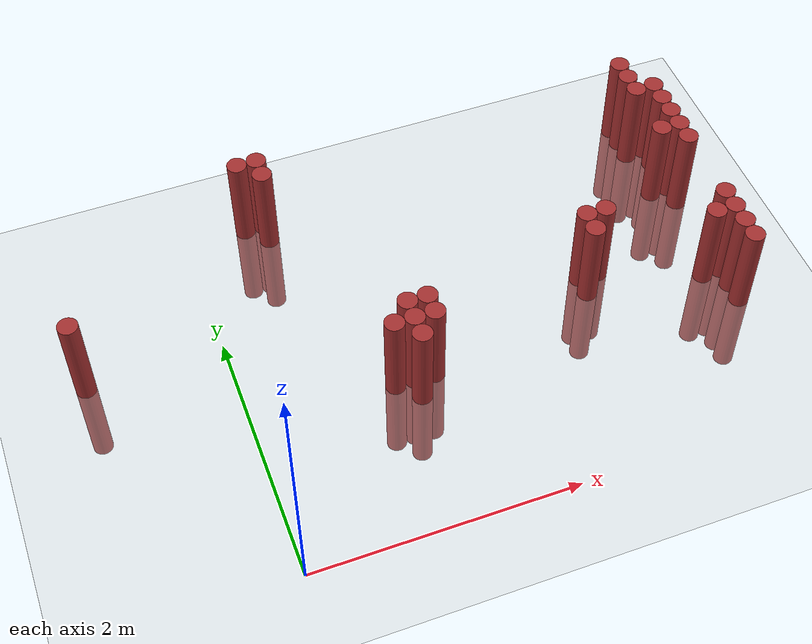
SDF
<sdf version="1.6">
 <world name="default">
  <model name="ground_plane">
   <static>1</static>
   <link name="link">
    <collision name="collision">
     <geometry><plane><normal>0 0 1</normal><size>100 100</size></plane></geometry>
     <surface><friction><ode><mu>100</mu><mu2>50</mu2></ode></friction></surface>
    </collision>
    <visual name="visual">
     <cast_shadows>0</cast_shadows>
     <geometry><plane><normal>0 0 1</normal><size>100 100</size></plane></geometry>
     <material>
      <script><uri>file://media/materials/scripts/gazebo.material</uri><name>Gazebo/Grey</name></script>
     </material>
    </visual>
   </link>
  </model>
  <model name="unit_cylinder_310">
   <static>1</static>
   <pose>-1.025000 1.975000 0.000000 0.000000 0.000000 0.000000</pose>
   <link name="link">
    <inertial>
     <mass>1</mass>
     <inertia><ixx>0.145833</ixx><ixy>0</ixy><ixz>0</ixz><iyy>0.145833</iyy><iyz>0</iyz><izz>0.125</izz></inertia>
    </inertial>
    <collision name="collision">
     <geometry><cylinder><radius>0.075000</radius><length>1.5</length></cylinder></geometry>
    </collision>
    <visual name="visual">
     <geometry><cylinder><radius>0.075000</radius><length>1.5</length></cylinder></geometry>
     <material>
      <ambient>0.648000 0.192000 0.192000 1</ambient>
      <diffuse>0.648000 0.192000 0.192000 1</diffuse>
     </material>
     <material>
      <script><name>Gazebo/Grey</name><uri>file://media/materials/scripts/gazebo.material</uri></script>
     </material>
    </visual>
   </link>
  </model>
  <model name="unit_cylinder_323">
   <static>1</static>
   <pose>0.475000 3.025000 0.000000 0.000000 0.000000 0.000000</pose>
   <link name="link">
    <inertial>
     <mass>1</mass>
     <inertia><ixx>0.145833</ixx><ixy>0</ixy><ixz>0</ixz><iyy>0.145833</iyy><iyz>0</iyz><izz>0.125</izz></inertia>
    </inertial>
    <collision name="collision">
     <geometry><cylinder><radius>0.075000</radius><length>1.5</length></cylinder></geometry>
    </collision>
    <visual name="visual">
     <geometry><cylinder><radius>0.075000</radius><length>1.5</length></cylinder></geometry>
     <material>
      <ambient>0.648000 0.192000 0.192000 1</ambient>
      <diffuse>0.648000 0.192000 0.192000 1</diffuse>
     </material>
     <material>
      <script><name>Gazebo/Grey</name><uri>file://media/materials/scripts/gazebo.material</uri></script>
     </material>
    </visual>
   </link>
  </model>
  <model name="unit_cylinder_327">
   <static>1</static>
   <pose>0.625000 2.875000 0.000000 0.000000 0.000000 0.000000</pose>
   <link name="link">
    <inertial>
     <mass>1</mass>
     <inertia><ixx>0.145833</ixx><ixy>0</ixy><ixz>0</ixz><iyy>0.145833</iyy><iyz>0</iyz><izz>0.125</izz></inertia>
    </inertial>
    <collision name="collision">
     <geometry><cylinder><radius>0.075000</radius><length>1.5</length></cylinder></geometry>
    </collision>
    <visual name="visual">
     <geometry><cylinder><radius>0.075000</radius><length>1.5</length></cylinder></geometry>
     <material>
      <ambient>0.648000 0.192000 0.192000 1</ambient>
      <diffuse>0.648000 0.192000 0.192000 1</diffuse>
     </material>
     <material>
      <script><name>Gazebo/Grey</name><uri>file://media/materials/scripts/gazebo.material</uri></script>
     </material>
    </visual>
   </link>
  </model>
  <model name="unit_cylinder_328">
   <static>1</static>
   <pose>0.625000 3.025000 0.000000 0.000000 0.000000 0.000000</pose>
   <link name="link">
    <inertial>
     <mass>1</mass>
     <inertia><ixx>0.145833</ixx><ixy>0</ixy><ixz>0</ixz><iyy>0.145833</iyy><iyz>0</iyz><izz>0.125</izz></inertia>
    </inertial>
    <collision name="collision">
     <geometry><cylinder><radius>0.075000</radius><length>1.5</length></cylinder></geometry>
    </collision>
    <visual name="visual">
     <geometry><cylinder><radius>0.075000</radius><length>1.5</length></cylinder></geometry>
     <material>
      <ambient>0.648000 0.192000 0.192000 1</ambient>
      <diffuse>0.648000 0.192000 0.192000 1</diffuse>
     </material>
     <material>
      <script><name>Gazebo/Grey</name><uri>file://media/materials/scripts/gazebo.material</uri></script>
     </material>
    </visual>
   </link>
  </model>
  <model name="unit_cylinder_334">
   <static>1</static>
   <pose>1.075000 1.225000 0.000000 0.000000 0.000000 0.000000</pose>
   <link name="link">
    <inertial>
     <mass>1</mass>
     <inertia><ixx>0.145833</ixx><ixy>0</ixy><ixz>0</ixz><iyy>0.145833</iyy><iyz>0</iyz><izz>0.125</izz></inertia>
    </inertial>
    <collision name="collision">
     <geometry><cylinder><radius>0.075000</radius><length>1.5</length></cylinder></geometry>
    </collision>
    <visual name="visual">
     <geometry><cylinder><radius>0.075000</radius><length>1.5</length></cylinder></geometry>
     <material>
      <ambient>0.648000 0.192000 0.192000 1</ambient>
      <diffuse>0.648000 0.192000 0.192000 1</diffuse>
     </material>
     <material>
      <script><name>Gazebo/Grey</name><uri>file://media/materials/scripts/gazebo.material</uri></script>
     </material>
    </visual>
   </link>
  </model>
  <model name="unit_cylinder_335">
   <static>1</static>
   <pose>1.225000 1.075000 0.000000 0.000000 0.000000 0.000000</pose>
   <link name="link">
    <inertial>
     <mass>1</mass>
     <inertia><ixx>0.145833</ixx><ixy>0</ixy><ixz>0</ixz><iyy>0.145833</iyy><iyz>0</iyz><izz>0.125</izz></inertia>
    </inertial>
    <collision name="collision">
     <geometry><cylinder><radius>0.075000</radius><length>1.5</length></cylinder></geometry>
    </collision>
    <visual name="visual">
     <geometry><cylinder><radius>0.075000</radius><length>1.5</length></cylinder></geometry>
     <material>
      <ambient>0.648000 0.192000 0.192000 1</ambient>
      <diffuse>0.648000 0.192000 0.192000 1</diffuse>
     </material>
     <material>
      <script><name>Gazebo/Grey</name><uri>file://media/materials/scripts/gazebo.material</uri></script>
     </material>
    </visual>
   </link>
  </model>
  <model name="unit_cylinder_336">
   <static>1</static>
   <pose>1.225000 1.225000 0.000000 0.000000 0.000000 0.000000</pose>
   <link name="link">
    <inertial>
     <mass>1</mass>
     <inertia><ixx>0.145833</ixx><ixy>0</ixy><ixz>0</ixz><iyy>0.145833</iyy><iyz>0</iyz><izz>0.125</izz></inertia>
    </inertial>
    <collision name="collision">
     <geometry><cylinder><radius>0.075000</radius><length>1.5</length></cylinder></geometry>
    </collision>
    <visual name="visual">
     <geometry><cylinder><radius>0.075000</radius><length>1.5</length></cylinder></geometry>
     <material>
      <ambient>0.648000 0.192000 0.192000 1</ambient>
      <diffuse>0.648000 0.192000 0.192000 1</diffuse>
     </material>
     <material>
      <script><name>Gazebo/Grey</name><uri>file://media/materials/scripts/gazebo.material</uri></script>
     </material>
    </visual>
   </link>
  </model>
  <model name="unit_cylinder_337">
   <static>1</static>
   <pose>1.225000 1.375000 0.000000 0.000000 0.000000 0.000000</pose>
   <link name="link">
    <inertial>
     <mass>1</mass>
     <inertia><ixx>0.145833</ixx><ixy>0</ixy><ixz>0</ixz><iyy>0.145833</iyy><iyz>0</iyz><izz>0.125</izz></inertia>
    </inertial>
    <collision name="collision">
     <geometry><cylinder><radius>0.075000</radius><length>1.5</length></cylinder></geometry>
    </collision>
    <visual name="visual">
     <geometry><cylinder><radius>0.075000</radius><length>1.5</length></cylinder></geometry>
     <material>
      <ambient>0.648000 0.192000 0.192000 1</ambient>
      <diffuse>0.648000 0.192000 0.192000 1</diffuse>
     </material>
     <material>
      <script><name>Gazebo/Grey</name><uri>file://media/materials/scripts/gazebo.material</uri></script>
     </material>
    </visual>
   </link>
  </model>
  <model name="unit_cylinder_338">
   <static>1</static>
   <pose>1.375000 1.225000 0.000000 0.000000 0.000000 0.000000</pose>
   <link name="link">
    <inertial>
     <mass>1</mass>
     <inertia><ixx>0.145833</ixx><ixy>0</ixy><ixz>0</ixz><iyy>0.145833</iyy><iyz>0</iyz><izz>0.125</izz></inertia>
    </inertial>
    <collision name="collision">
     <geometry><cylinder><radius>0.075000</radius><length>1.5</length></cylinder></geometry>
    </collision>
    <visual name="visual">
     <geometry><cylinder><radius>0.075000</radius><length>1.5</length></cylinder></geometry>
     <material>
      <ambient>0.648000 0.192000 0.192000 1</ambient>
      <diffuse>0.648000 0.192000 0.192000 1</diffuse>
     </material>
     <material>
      <script><name>Gazebo/Grey</name><uri>file://media/materials/scripts/gazebo.material</uri></script>
     </material>
    </visual>
   </link>
  </model>
  <model name="unit_cylinder_339">
   <static>1</static>
   <pose>1.375000 1.375000 0.000000 0.000000 0.000000 0.000000</pose>
   <link name="link">
    <inertial>
     <mass>1</mass>
     <inertia><ixx>0.145833</ixx><ixy>0</ixy><ixz>0</ixz><iyy>0.145833</iyy><iyz>0</iyz><izz>0.125</izz></inertia>
    </inertial>
    <collision name="collision">
     <geometry><cylinder><radius>0.075000</radius><length>1.5</length></cylinder></geometry>
    </collision>
    <visual name="visual">
     <geometry><cylinder><radius>0.075000</radius><length>1.5</length></cylinder></geometry>
     <material>
      <ambient>0.648000 0.192000 0.192000 1</ambient>
      <diffuse>0.648000 0.192000 0.192000 1</diffuse>
     </material>
     <material>
      <script><name>Gazebo/Grey</name><uri>file://media/materials/scripts/gazebo.material</uri></script>
     </material>
    </visual>
   </link>
  </model>
  <model name="unit_cylinder_343">
   <static>1</static>
   <pose>2.725000 1.525000 0.000000 0.000000 0.000000 0.000000</pose>
   <link name="link">
    <inertial>
     <mass>1</mass>
     <inertia><ixx>0.145833</ixx><ixy>0</ixy><ixz>0</ixz><iyy>0.145833</iyy><iyz>0</iyz><izz>0.125</izz></inertia>
    </inertial>
    <collision name="collision">
     <geometry><cylinder><radius>0.075000</radius><length>1.5</length></cylinder></geometry>
    </collision>
    <visual name="visual">
     <geometry><cylinder><radius>0.075000</radius><length>1.5</length></cylinder></geometry>
     <material>
      <ambient>0.648000 0.192000 0.192000 1</ambient>
      <diffuse>0.648000 0.192000 0.192000 1</diffuse>
     </material>
     <material>
      <script><name>Gazebo/Grey</name><uri>file://media/materials/scripts/gazebo.material</uri></script>
     </material>
    </visual>
   </link>
  </model>
  <model name="unit_cylinder_344">
   <static>1</static>
   <pose>2.725000 1.675000 0.000000 0.000000 0.000000 0.000000</pose>
   <link name="link">
    <inertial>
     <mass>1</mass>
     <inertia><ixx>0.145833</ixx><ixy>0</ixy><ixz>0</ixz><iyy>0.145833</iyy><iyz>0</iyz><izz>0.125</izz></inertia>
    </inertial>
    <collision name="collision">
     <geometry><cylinder><radius>0.075000</radius><length>1.5</length></cylinder></geometry>
    </collision>
    <visual name="visual">
     <geometry><cylinder><radius>0.075000</radius><length>1.5</length></cylinder></geometry>
     <material>
      <ambient>0.648000 0.192000 0.192000 1</ambient>
      <diffuse>0.648000 0.192000 0.192000 1</diffuse>
     </material>
     <material>
      <script><name>Gazebo/Grey</name><uri>file://media/materials/scripts/gazebo.material</uri></script>
     </material>
    </visual>
   </link>
  </model>
  <model name="unit_cylinder_345">
   <static>1</static>
   <pose>2.875000 1.675000 0.000000 0.000000 0.000000 0.000000</pose>
   <link name="link">
    <inertial>
     <mass>1</mass>
     <inertia><ixx>0.145833</ixx><ixy>0</ixy><ixz>0</ixz><iyy>0.145833</iyy><iyz>0</iyz><izz>0.125</izz></inertia>
    </inertial>
    <collision name="collision">
     <geometry><cylinder><radius>0.075000</radius><length>1.5</length></cylinder></geometry>
    </collision>
    <visual name="visual">
     <geometry><cylinder><radius>0.075000</radius><length>1.5</length></cylinder></geometry>
     <material>
      <ambient>0.648000 0.192000 0.192000 1</ambient>
      <diffuse>0.648000 0.192000 0.192000 1</diffuse>
     </material>
     <material>
      <script><name>Gazebo/Grey</name><uri>file://media/materials/scripts/gazebo.material</uri></script>
     </material>
    </visual>
   </link>
  </model>
  <model name="unit_cylinder_356">
   <static>1</static>
   <pose>3.625000 1.375000 0.000000 0.000000 0.000000 0.000000</pose>
   <link name="link">
    <inertial>
     <mass>1</mass>
     <inertia><ixx>0.145833</ixx><ixy>0</ixy><ixz>0</ixz><iyy>0.145833</iyy><iyz>0</iyz><izz>0.125</izz></inertia>
    </inertial>
    <collision name="collision">
     <geometry><cylinder><radius>0.075000</radius><length>1.5</length></cylinder></geometry>
    </collision>
    <visual name="visual">
     <geometry><cylinder><radius>0.075000</radius><length>1.5</length></cylinder></geometry>
     <material>
      <ambient>0.648000 0.192000 0.192000 1</ambient>
      <diffuse>0.648000 0.192000 0.192000 1</diffuse>
     </material>
     <material>
      <script><name>Gazebo/Grey</name><uri>file://media/materials/scripts/gazebo.material</uri></script>
     </material>
    </visual>
   </link>
  </model>
  <model name="unit_cylinder_357">
   <static>1</static>
   <pose>3.625000 2.275000 0.000000 0.000000 0.000000 0.000000</pose>
   <link name="link">
    <inertial>
     <mass>1</mass>
     <inertia><ixx>0.145833</ixx><ixy>0</ixy><ixz>0</ixz><iyy>0.145833</iyy><iyz>0</iyz><izz>0.125</izz></inertia>
    </inertial>
    <collision name="collision">
     <geometry><cylinder><radius>0.075000</radius><length>1.5</length></cylinder></geometry>
    </collision>
    <visual name="visual">
     <geometry><cylinder><radius>0.075000</radius><length>1.5</length></cylinder></geometry>
     <material>
      <ambient>0.648000 0.192000 0.192000 1</ambient>
      <diffuse>0.648000 0.192000 0.192000 1</diffuse>
     </material>
     <material>
      <script><name>Gazebo/Grey</name><uri>file://media/materials/scripts/gazebo.material</uri></script>
     </material>
    </visual>
   </link>
  </model>
  <model name="unit_cylinder_358">
   <static>1</static>
   <pose>3.625000 2.725000 0.000000 0.000000 0.000000 0.000000</pose>
   <link name="link">
    <inertial>
     <mass>1</mass>
     <inertia><ixx>0.145833</ixx><ixy>0</ixy><ixz>0</ixz><iyy>0.145833</iyy><iyz>0</iyz><izz>0.125</izz></inertia>
    </inertial>
    <collision name="collision">
     <geometry><cylinder><radius>0.075000</radius><length>1.5</length></cylinder></geometry>
    </collision>
    <visual name="visual">
     <geometry><cylinder><radius>0.075000</radius><length>1.5</length></cylinder></geometry>
     <material>
      <ambient>0.648000 0.192000 0.192000 1</ambient>
      <diffuse>0.648000 0.192000 0.192000 1</diffuse>
     </material>
     <material>
      <script><name>Gazebo/Grey</name><uri>file://media/materials/scripts/gazebo.material</uri></script>
     </material>
    </visual>
   </link>
  </model>
  <model name="unit_cylinder_359">
   <static>1</static>
   <pose>3.625000 2.875000 0.000000 0.000000 0.000000 0.000000</pose>
   <link name="link">
    <inertial>
     <mass>1</mass>
     <inertia><ixx>0.145833</ixx><ixy>0</ixy><ixz>0</ixz><iyy>0.145833</iyy><iyz>0</iyz><izz>0.125</izz></inertia>
    </inertial>
    <collision name="collision">
     <geometry><cylinder><radius>0.075000</radius><length>1.5</length></cylinder></geometry>
    </collision>
    <visual name="visual">
     <geometry><cylinder><radius>0.075000</radius><length>1.5</length></cylinder></geometry>
     <material>
      <ambient>0.648000 0.192000 0.192000 1</ambient>
      <diffuse>0.648000 0.192000 0.192000 1</diffuse>
     </material>
     <material>
      <script><name>Gazebo/Grey</name><uri>file://media/materials/scripts/gazebo.material</uri></script>
     </material>
    </visual>
   </link>
  </model>
  <model name="unit_cylinder_360">
   <static>1</static>
   <pose>3.625000 3.025000 0.000000 0.000000 0.000000 0.000000</pose>
   <link name="link">
    <inertial>
     <mass>1</mass>
     <inertia><ixx>0.145833</ixx><ixy>0</ixy><ixz>0</ixz><iyy>0.145833</iyy><iyz>0</iyz><izz>0.125</izz></inertia>
    </inertial>
    <collision name="collision">
     <geometry><cylinder><radius>0.075000</radius><length>1.5</length></cylinder></geometry>
    </collision>
    <visual name="visual">
     <geometry><cylinder><radius>0.075000</radius><length>1.5</length></cylinder></geometry>
     <material>
      <ambient>0.648000 0.192000 0.192000 1</ambient>
      <diffuse>0.648000 0.192000 0.192000 1</diffuse>
     </material>
     <material>
      <script><name>Gazebo/Grey</name><uri>file://media/materials/scripts/gazebo.material</uri></script>
     </material>
    </visual>
   </link>
  </model>
  <model name="unit_cylinder_369">
   <static>1</static>
   <pose>3.775000 1.075000 0.000000 0.000000 0.000000 0.000000</pose>
   <link name="link">
    <inertial>
     <mass>1</mass>
     <inertia><ixx>0.145833</ixx><ixy>0</ixy><ixz>0</ixz><iyy>0.145833</iyy><iyz>0</iyz><izz>0.125</izz></inertia>
    </inertial>
    <collision name="collision">
     <geometry><cylinder><radius>0.075000</radius><length>1.5</length></cylinder></geometry>
    </collision>
    <visual name="visual">
     <geometry><cylinder><radius>0.075000</radius><length>1.5</length></cylinder></geometry>
     <material>
      <ambient>0.648000 0.192000 0.192000 1</ambient>
      <diffuse>0.648000 0.192000 0.192000 1</diffuse>
     </material>
     <material>
      <script><name>Gazebo/Grey</name><uri>file://media/materials/scripts/gazebo.material</uri></script>
     </material>
    </visual>
   </link>
  </model>
  <model name="unit_cylinder_370">
   <static>1</static>
   <pose>3.775000 1.225000 0.000000 0.000000 0.000000 0.000000</pose>
   <link name="link">
    <inertial>
     <mass>1</mass>
     <inertia><ixx>0.145833</ixx><ixy>0</ixy><ixz>0</ixz><iyy>0.145833</iyy><iyz>0</iyz><izz>0.125</izz></inertia>
    </inertial>
    <collision name="collision">
     <geometry><cylinder><radius>0.075000</radius><length>1.5</length></cylinder></geometry>
    </collision>
    <visual name="visual">
     <geometry><cylinder><radius>0.075000</radius><length>1.5</length></cylinder></geometry>
     <material>
      <ambient>0.648000 0.192000 0.192000 1</ambient>
      <diffuse>0.648000 0.192000 0.192000 1</diffuse>
     </material>
     <material>
      <script><name>Gazebo/Grey</name><uri>file://media/materials/scripts/gazebo.material</uri></script>
     </material>
    </visual>
   </link>
  </model>
  <model name="unit_cylinder_371">
   <static>1</static>
   <pose>3.775000 1.375000 0.000000 0.000000 0.000000 0.000000</pose>
   <link name="link">
    <inertial>
     <mass>1</mass>
     <inertia><ixx>0.145833</ixx><ixy>0</ixy><ixz>0</ixz><iyy>0.145833</iyy><iyz>0</iyz><izz>0.125</izz></inertia>
    </inertial>
    <collision name="collision">
     <geometry><cylinder><radius>0.075000</radius><length>1.5</length></cylinder></geometry>
    </collision>
    <visual name="visual">
     <geometry><cylinder><radius>0.075000</radius><length>1.5</length></cylinder></geometry>
     <material>
      <ambient>0.648000 0.192000 0.192000 1</ambient>
      <diffuse>0.648000 0.192000 0.192000 1</diffuse>
     </material>
     <material>
      <script><name>Gazebo/Grey</name><uri>file://media/materials/scripts/gazebo.material</uri></script>
     </material>
    </visual>
   </link>
  </model>
  <model name="unit_cylinder_372">
   <static>1</static>
   <pose>3.775000 1.525000 0.000000 0.000000 0.000000 0.000000</pose>
   <link name="link">
    <inertial>
     <mass>1</mass>
     <inertia><ixx>0.145833</ixx><ixy>0</ixy><ixz>0</ixz><iyy>0.145833</iyy><iyz>0</iyz><izz>0.125</izz></inertia>
    </inertial>
    <collision name="collision">
     <geometry><cylinder><radius>0.075000</radius><length>1.5</length></cylinder></geometry>
    </collision>
    <visual name="visual">
     <geometry><cylinder><radius>0.075000</radius><length>1.5</length></cylinder></geometry>
     <material>
      <ambient>0.648000 0.192000 0.192000 1</ambient>
      <diffuse>0.648000 0.192000 0.192000 1</diffuse>
     </material>
     <material>
      <script><name>Gazebo/Grey</name><uri>file://media/materials/scripts/gazebo.material</uri></script>
     </material>
    </visual>
   </link>
  </model>
  <model name="unit_cylinder_373">
   <static>1</static>
   <pose>3.775000 2.125000 0.000000 0.000000 0.000000 0.000000</pose>
   <link name="link">
    <inertial>
     <mass>1</mass>
     <inertia><ixx>0.145833</ixx><ixy>0</ixy><ixz>0</ixz><iyy>0.145833</iyy><iyz>0</iyz><izz>0.125</izz></inertia>
    </inertial>
    <collision name="collision">
     <geometry><cylinder><radius>0.075000</radius><length>1.5</length></cylinder></geometry>
    </collision>
    <visual name="visual">
     <geometry><cylinder><radius>0.075000</radius><length>1.5</length></cylinder></geometry>
     <material>
      <ambient>0.648000 0.192000 0.192000 1</ambient>
      <diffuse>0.648000 0.192000 0.192000 1</diffuse>
     </material>
     <material>
      <script><name>Gazebo/Grey</name><uri>file://media/materials/scripts/gazebo.material</uri></script>
     </material>
    </visual>
   </link>
  </model>
  <model name="unit_cylinder_374">
   <static>1</static>
   <pose>3.775000 2.275000 0.000000 0.000000 0.000000 0.000000</pose>
   <link name="link">
    <inertial>
     <mass>1</mass>
     <inertia><ixx>0.145833</ixx><ixy>0</ixy><ixz>0</ixz><iyy>0.145833</iyy><iyz>0</iyz><izz>0.125</izz></inertia>
    </inertial>
    <collision name="collision">
     <geometry><cylinder><radius>0.075000</radius><length>1.5</length></cylinder></geometry>
    </collision>
    <visual name="visual">
     <geometry><cylinder><radius>0.075000</radius><length>1.5</length></cylinder></geometry>
     <material>
      <ambient>0.648000 0.192000 0.192000 1</ambient>
      <diffuse>0.648000 0.192000 0.192000 1</diffuse>
     </material>
     <material>
      <script><name>Gazebo/Grey</name><uri>file://media/materials/scripts/gazebo.material</uri></script>
     </material>
    </visual>
   </link>
  </model>
  <model name="unit_cylinder_375">
   <static>1</static>
   <pose>3.775000 2.425000 0.000000 0.000000 0.000000 0.000000</pose>
   <link name="link">
    <inertial>
     <mass>1</mass>
     <inertia><ixx>0.145833</ixx><ixy>0</ixy><ixz>0</ixz><iyy>0.145833</iyy><iyz>0</iyz><izz>0.125</izz></inertia>
    </inertial>
    <collision name="collision">
     <geometry><cylinder><radius>0.075000</radius><length>1.5</length></cylinder></geometry>
    </collision>
    <visual name="visual">
     <geometry><cylinder><radius>0.075000</radius><length>1.5</length></cylinder></geometry>
     <material>
      <ambient>0.648000 0.192000 0.192000 1</ambient>
      <diffuse>0.648000 0.192000 0.192000 1</diffuse>
     </material>
     <material>
      <script><name>Gazebo/Grey</name><uri>file://media/materials/scripts/gazebo.material</uri></script>
     </material>
    </visual>
   </link>
  </model>
  <model name="unit_cylinder_376">
   <static>1</static>
   <pose>3.775000 2.575000 0.000000 0.000000 0.000000 0.000000</pose>
   <link name="link">
    <inertial>
     <mass>1</mass>
     <inertia><ixx>0.145833</ixx><ixy>0</ixy><ixz>0</ixz><iyy>0.145833</iyy><iyz>0</iyz><izz>0.125</izz></inertia>
    </inertial>
    <collision name="collision">
     <geometry><cylinder><radius>0.075000</radius><length>1.5</length></cylinder></geometry>
    </collision>
    <visual name="visual">
     <geometry><cylinder><radius>0.075000</radius><length>1.5</length></cylinder></geometry>
     <material>
      <ambient>0.648000 0.192000 0.192000 1</ambient>
      <diffuse>0.648000 0.192000 0.192000 1</diffuse>
     </material>
     <material>
      <script><name>Gazebo/Grey</name><uri>file://media/materials/scripts/gazebo.material</uri></script>
     </material>
    </visual>
   </link>
  </model>
  <model name="unit_cylinder_377">
   <static>1</static>
   <pose>3.775000 2.725000 0.000000 0.000000 0.000000 0.000000</pose>
   <link name="link">
    <inertial>
     <mass>1</mass>
     <inertia><ixx>0.145833</ixx><ixy>0</ixy><ixz>0</ixz><iyy>0.145833</iyy><iyz>0</iyz><izz>0.125</izz></inertia>
    </inertial>
    <collision name="collision">
     <geometry><cylinder><radius>0.075000</radius><length>1.5</length></cylinder></geometry>
    </collision>
    <visual name="visual">
     <geometry><cylinder><radius>0.075000</radius><length>1.5</length></cylinder></geometry>
     <material>
      <ambient>0.648000 0.192000 0.192000 1</ambient>
      <diffuse>0.648000 0.192000 0.192000 1</diffuse>
     </material>
     <material>
      <script><name>Gazebo/Grey</name><uri>file://media/materials/scripts/gazebo.material</uri></script>
     </material>
    </visual>
   </link>
  </model>
 </world>
</sdf>
